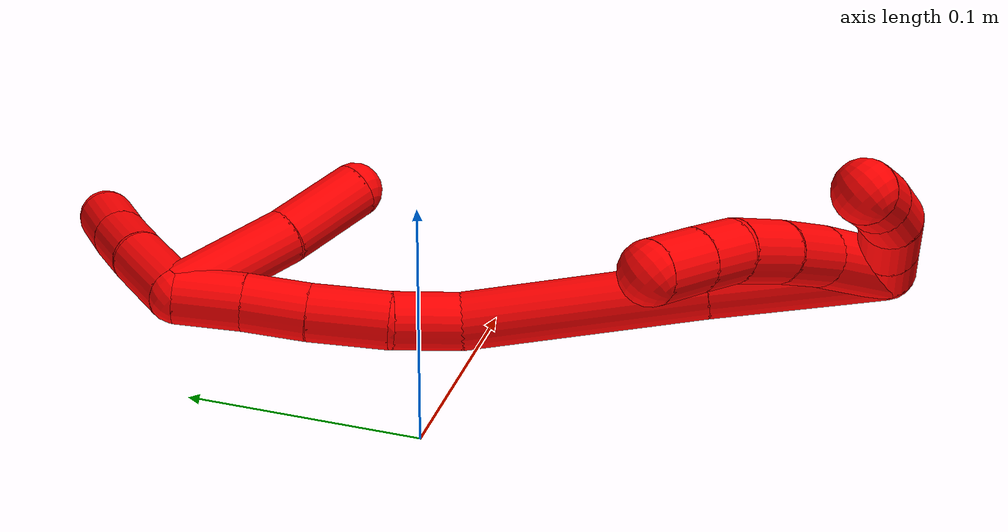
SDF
<sdf version="1.7">
 <world name="default">
  <model name="2">
   <static>0</static>
   <link name="2">
    <collision name="collision-cylinder-e_1_2_8">
     <pose>-0.015589 0.01366 0.009051 -0.9856 -0.760452 0.422829</pose>
     <geometry><cylinder><radius>0.0125</radius><length>0.045234</length></cylinder></geometry>
     <surface>
      <friction><ode><mu>1.16</mu><mu2>1.16</mu2><slip1>0</slip1><slip2>0</slip2></ode></friction>
      <contact><ode><kp>1e+06</kp><kd>1</kd><max_vel>0</max_vel><min_depth>0.001</min_depth></ode></contact>
     </surface>
    </collision>
    <visual name="visual-cylinder-e_1_2_8">
     <pose>-0.015589 0.01366 0.009051 -0.9856 -0.760452 0.422829</pose>
     <geometry><cylinder><radius>0.0125</radius><length>0.045234</length></cylinder></geometry>
     <material><ambient>1 0 0 1</ambient></material>
    </visual>
    <collision name="collision-cylinder-e_2_8_9">
     <pose>-0.04331 0.036869 0.022359 -1.15154 -0.859536 0.578371</pose>
     <geometry><cylinder><radius>0.0125</radius><length>0.032031</length></cylinder></geometry>
     <surface>
      <friction><ode><mu>1.16</mu><mu2>1.16</mu2><slip1>0</slip1><slip2>0</slip2></ode></friction>
      <contact><ode><kp>1e+06</kp><kd>1</kd><max_vel>0</max_vel><min_depth>0.001</min_depth></ode></contact>
     </surface>
    </collision>
    <visual name="visual-cylinder-e_2_8_9">
     <pose>-0.04331 0.036869 0.022359 -1.15154 -0.859536 0.578371</pose>
     <geometry><cylinder><radius>0.0125</radius><length>0.032031</length></cylinder></geometry>
     <material><ambient>1 0 0 1</ambient></material>
    </visual>
    <collision name="collision-cylinder-e_3_9_10">
     <pose>-0.065725 0.056077 0.030772 -1.16436 -0.774236 0.524397</pose>
     <geometry><cylinder><radius>0.0125</radius><length>0.029413</length></cylinder></geometry>
     <surface>
      <friction><ode><mu>1.16</mu><mu2>1.16</mu2><slip1>0</slip1><slip2>0</slip2></ode></friction>
      <contact><ode><kp>1e+06</kp><kd>1</kd><max_vel>0</max_vel><min_depth>0.001</min_depth></ode></contact>
     </surface>
    </collision>
    <visual name="visual-cylinder-e_3_9_10">
     <pose>-0.065725 0.056077 0.030772 -1.16436 -0.774236 0.524397</pose>
     <geometry><cylinder><radius>0.0125</radius><length>0.029413</length></cylinder></geometry>
     <material><ambient>1 0 0 1</ambient></material>
    </visual>
    <collision name="collision-cylinder-e_4_10_11">
     <pose>-0.08181 0.073921 0.036985 -1.32463 -0.602274 0.475247</pose>
     <geometry><cylinder><radius>0.0125</radius><length>0.020486</length></cylinder></geometry>
     <surface>
      <friction><ode><mu>1.16</mu><mu2>1.16</mu2><slip1>0</slip1><slip2>0</slip2></ode></friction>
      <contact><ode><kp>1e+06</kp><kd>1</kd><max_vel>0</max_vel><min_depth>0.001</min_depth></ode></contact>
     </surface>
    </collision>
    <visual name="visual-cylinder-e_4_10_11">
     <pose>-0.08181 0.073921 0.036985 -1.32463 -0.602274 0.475247</pose>
     <geometry><cylinder><radius>0.0125</radius><length>0.020486</length></cylinder></geometry>
     <material><ambient>1 0 0 1</ambient></material>
    </visual>
    <collision name="collision-cylinder-e_5_11_6">
     <pose>-0.093924 0.091367 0.041229 -1.33891 -0.585663 0.468435</pose>
     <geometry><cylinder><radius>0.0125</radius><length>0.022836</length></cylinder></geometry>
     <surface>
      <friction><ode><mu>1.16</mu><mu2>1.16</mu2><slip1>0</slip1><slip2>0</slip2></ode></friction>
      <contact><ode><kp>1e+06</kp><kd>1</kd><max_vel>0</max_vel><min_depth>0.001</min_depth></ode></contact>
     </surface>
    </collision>
    <visual name="visual-cylinder-e_5_11_6">
     <pose>-0.093924 0.091367 0.041229 -1.33891 -0.585663 0.468435</pose>
     <geometry><cylinder><radius>0.0125</radius><length>0.022836</length></cylinder></geometry>
     <material><ambient>1 0 0 1</ambient></material>
    </visual>
    <collision name="collision-cylinder-e_1_2_12">
     <pose>-0.011854 0.000514 0.002202 -0.229241 -1.38233 0.189912</pose>
     <geometry><cylinder><radius>0.0125</radius><length>0.024135</length></cylinder></geometry>
     <surface>
      <friction><ode><mu>1.16</mu><mu2>1.16</mu2><slip1>0</slip1><slip2>0</slip2></ode></friction>
      <contact><ode><kp>1e+06</kp><kd>1</kd><max_vel>0</max_vel><min_depth>0.001</min_depth></ode></contact>
     </surface>
    </collision>
    <visual name="visual-cylinder-e_1_2_12">
     <pose>-0.011854 0.000514 0.002202 -0.229241 -1.38233 0.189912</pose>
     <geometry><cylinder><radius>0.0125</radius><length>0.024135</length></cylinder></geometry>
     <material><ambient>1 0 0 1</ambient></material>
    </visual>
    <collision name="collision-cylinder-e_2_12_13">
     <pose>-0.037897 0.001635 0.006912 -0.237522 -1.39086 0.198496</pose>
     <geometry><cylinder><radius>0.0125</radius><length>0.028843</length></cylinder></geometry>
     <surface>
      <friction><ode><mu>1.16</mu><mu2>1.16</mu2><slip1>0</slip1><slip2>0</slip2></ode></friction>
      <contact><ode><kp>1e+06</kp><kd>1</kd><max_vel>0</max_vel><min_depth>0.001</min_depth></ode></contact>
     </surface>
    </collision>
    <visual name="visual-cylinder-e_2_12_13">
     <pose>-0.037897 0.001635 0.006912 -0.237522 -1.39086 0.198496</pose>
     <geometry><cylinder><radius>0.0125</radius><length>0.028843</length></cylinder></geometry>
     <material><ambient>1 0 0 1</ambient></material>
    </visual>
    <collision name="collision-cylinder-e_3_13_14">
     <pose>-0.063652 0.006159 0.01235 -0.928689 -1.17073 0.641114</pose>
     <geometry><cylinder><radius>0.0125</radius><length>0.025118</length></cylinder></geometry>
     <surface>
      <friction><ode><mu>1.16</mu><mu2>1.16</mu2><slip1>0</slip1><slip2>0</slip2></ode></friction>
      <contact><ode><kp>1e+06</kp><kd>1</kd><max_vel>0</max_vel><min_depth>0.001</min_depth></ode></contact>
     </surface>
    </collision>
    <visual name="visual-cylinder-e_3_13_14">
     <pose>-0.063652 0.006159 0.01235 -0.928689 -1.17073 0.641114</pose>
     <geometry><cylinder><radius>0.0125</radius><length>0.025118</length></cylinder></geometry>
     <material><ambient>1 0 0 1</ambient></material>
    </visual>
    <collision name="collision-cylinder-e_4_14_5">
     <pose>-0.085134 0.014403 0.016991 -1.19405 -1.13202 0.8154</pose>
     <geometry><cylinder><radius>0.0125</radius><length>0.021904</length></cylinder></geometry>
     <surface>
      <friction><ode><mu>1.16</mu><mu2>1.16</mu2><slip1>0</slip1><slip2>0</slip2></ode></friction>
      <contact><ode><kp>1e+06</kp><kd>1</kd><max_vel>0</max_vel><min_depth>0.001</min_depth></ode></contact>
     </surface>
    </collision>
    <visual name="visual-cylinder-e_4_14_5">
     <pose>-0.085134 0.014403 0.016991 -1.19405 -1.13202 0.8154</pose>
     <geometry><cylinder><radius>0.0125</radius><length>0.021904</length></cylinder></geometry>
     <material><ambient>1 0 0 1</ambient></material>
    </visual>
    <collision name="collision-cylinder-e_1_2_15">
     <pose>0.003376 0.030719 0.020655 -0.978847 0.090947 -0.048467</pose>
     <geometry><cylinder><radius>0.0125</radius><length>0.074342</length></cylinder></geometry>
     <surface>
      <friction><ode><mu>1.16</mu><mu2>1.16</mu2><slip1>0</slip1><slip2>0</slip2></ode></friction>
      <contact><ode><kp>1e+06</kp><kd>1</kd><max_vel>0</max_vel><min_depth>0.001</min_depth></ode></contact>
     </surface>
    </collision>
    <visual name="visual-cylinder-e_1_2_15">
     <pose>0.003376 0.030719 0.020655 -0.978847 0.090947 -0.048467</pose>
     <geometry><cylinder><radius>0.0125</radius><length>0.074342</length></cylinder></geometry>
     <material><ambient>1 0 0 1</ambient></material>
    </visual>
    <collision name="collision-cylinder-e_2_15_16">
     <pose>0.012605 0.104797 0.069338 -0.996937 0.11288 -0.061488</pose>
     <geometry><cylinder><radius>0.0125</radius><length>0.103919</length></cylinder></geometry>
     <surface>
      <friction><ode><mu>1.16</mu><mu2>1.16</mu2><slip1>0</slip1><slip2>0</slip2></ode></friction>
      <contact><ode><kp>1e+06</kp><kd>1</kd><max_vel>0</max_vel><min_depth>0.001</min_depth></ode></contact>
     </surface>
    </collision>
    <visual name="visual-cylinder-e_2_15_16">
     <pose>0.012605 0.104797 0.069338 -0.996937 0.11288 -0.061488</pose>
     <geometry><cylinder><radius>0.0125</radius><length>0.103919</length></cylinder></geometry>
     <material><ambient>1 0 0 1</ambient></material>
    </visual>
    <collision name="collision-cylinder-e_3_16_17">
     <pose>0.015816 0.159886 0.106185 -0.926191 -0.178111 0.089109</pose>
     <geometry><cylinder><radius>0.0125</radius><length>0.029823</length></cylinder></geometry>
     <surface>
      <friction><ode><mu>1.16</mu><mu2>1.16</mu2><slip1>0</slip1><slip2>0</slip2></ode></friction>
      <contact><ode><kp>1e+06</kp><kd>1</kd><max_vel>0</max_vel><min_depth>0.001</min_depth></ode></contact>
     </surface>
    </collision>
    <visual name="visual-cylinder-e_3_16_17">
     <pose>0.015816 0.159886 0.106185 -0.926191 -0.178111 0.089109</pose>
     <geometry><cylinder><radius>0.0125</radius><length>0.029823</length></cylinder></geometry>
     <material><ambient>1 0 0 1</ambient></material>
    </visual>
    <collision name="collision-cylinder-e_4_17_18">
     <pose>0.013313 0.183989 0.127323 -0.787519 0.007966 -0.00331</pose>
     <geometry><cylinder><radius>0.0125</radius><length>0.034921</length></cylinder></geometry>
     <surface>
      <friction><ode><mu>1.16</mu><mu2>1.16</mu2><slip1>0</slip1><slip2>0</slip2></ode></friction>
      <contact><ode><kp>1e+06</kp><kd>1</kd><max_vel>0</max_vel><min_depth>0.001</min_depth></ode></contact>
     </surface>
    </collision>
    <visual name="visual-cylinder-e_4_17_18">
     <pose>0.013313 0.183989 0.127323 -0.787519 0.007966 -0.00331</pose>
     <geometry><cylinder><radius>0.0125</radius><length>0.034921</length></cylinder></geometry>
     <material><ambient>1 0 0 1</ambient></material>
    </visual>
    <collision name="collision-cylinder-e_5_18_19">
     <pose>0.013422 0.205649 0.149998 -0.731125 -0.002163 0.000828</pose>
     <geometry><cylinder><radius>0.0125</radius><length>0.027821</length></cylinder></geometry>
     <surface>
      <friction><ode><mu>1.16</mu><mu2>1.16</mu2><slip1>0</slip1><slip2>0</slip2></ode></friction>
      <contact><ode><kp>1e+06</kp><kd>1</kd><max_vel>0</max_vel><min_depth>0.001</min_depth></ode></contact>
     </surface>
    </collision>
    <visual name="visual-cylinder-e_5_18_19">
     <pose>0.013422 0.205649 0.149998 -0.731125 -0.002163 0.000828</pose>
     <geometry><cylinder><radius>0.0125</radius><length>0.027821</length></cylinder></geometry>
     <material><ambient>1 0 0 1</ambient></material>
    </visual>
    <collision name="collision-cylinder-e_6_19_1">
     <pose>0.013061 0.225236 0.170678 -0.784117 -0.022668 0.009373</pose>
     <geometry><cylinder><radius>0.0125</radius><length>0.029174</length></cylinder></geometry>
     <surface>
      <friction><ode><mu>1.16</mu><mu2>1.16</mu2><slip1>0</slip1><slip2>0</slip2></ode></friction>
      <contact><ode><kp>1e+06</kp><kd>1</kd><max_vel>0</max_vel><min_depth>0.001</min_depth></ode></contact>
     </surface>
    </collision>
    <visual name="visual-cylinder-e_6_19_1">
     <pose>0.013061 0.225236 0.170678 -0.784117 -0.022668 0.009373</pose>
     <geometry><cylinder><radius>0.0125</radius><length>0.029174</length></cylinder></geometry>
     <material><ambient>1 0 0 1</ambient></material>
    </visual>
    <collision name="collision-cylinder-e_1_1_20">
     <pose>0.025066 0.236521 0.196664 -0.062907 0.666192 -0.021771</pose>
     <geometry><cylinder><radius>0.0125</radius><length>0.03992</length></cylinder></geometry>
     <surface>
      <friction><ode><mu>1.16</mu><mu2>1.16</mu2><slip1>0</slip1><slip2>0</slip2></ode></friction>
      <contact><ode><kp>1e+06</kp><kd>1</kd><max_vel>0</max_vel><min_depth>0.001</min_depth></ode></contact>
     </surface>
    </collision>
    <visual name="visual-cylinder-e_1_1_20">
     <pose>0.025066 0.236521 0.196664 -0.062907 0.666192 -0.021771</pose>
     <geometry><cylinder><radius>0.0125</radius><length>0.03992</length></cylinder></geometry>
     <material><ambient>1 0 0 1</ambient></material>
    </visual>
    <collision name="collision-cylinder-e_2_20_21">
     <pose>0.049042 0.237623 0.223289 -0.010494 0.815326 -0.004532</pose>
     <geometry><cylinder><radius>0.0125</radius><length>0.031983</length></cylinder></geometry>
     <surface>
      <friction><ode><mu>1.16</mu><mu2>1.16</mu2><slip1>0</slip1><slip2>0</slip2></ode></friction>
      <contact><ode><kp>1e+06</kp><kd>1</kd><max_vel>0</max_vel><min_depth>0.001</min_depth></ode></contact>
     </surface>
    </collision>
    <visual name="visual-cylinder-e_2_20_21">
     <pose>0.049042 0.237623 0.223289 -0.010494 0.815326 -0.004532</pose>
     <geometry><cylinder><radius>0.0125</radius><length>0.031983</length></cylinder></geometry>
     <material><ambient>1 0 0 1</ambient></material>
    </visual>
    <collision name="collision-cylinder-e_3_21_4">
     <pose>0.070736 0.237268 0.244054 0.04787 0.797503 0.020172</pose>
     <geometry><cylinder><radius>0.0125</radius><length>0.028097</length></cylinder></geometry>
     <surface>
      <friction><ode><mu>1.16</mu><mu2>1.16</mu2><slip1>0</slip1><slip2>0</slip2></ode></friction>
      <contact><ode><kp>1e+06</kp><kd>1</kd><max_vel>0</max_vel><min_depth>0.001</min_depth></ode></contact>
     </surface>
    </collision>
    <visual name="visual-cylinder-e_3_21_4">
     <pose>0.070736 0.237268 0.244054 0.04787 0.797503 0.020172</pose>
     <geometry><cylinder><radius>0.0125</radius><length>0.028097</length></cylinder></geometry>
     <material><ambient>1 0 0 1</ambient></material>
    </visual>
    <collision name="collision-cylinder-e_1_1_22">
     <pose>0.023492 0.20879 0.180138 1.60312 0.382376 0.394622</pose>
     <geometry><cylinder><radius>0.0125</radius><length>0.057682</length></cylinder></geometry>
     <surface>
      <friction><ode><mu>1.16</mu><mu2>1.16</mu2><slip1>0</slip1><slip2>0</slip2></ode></friction>
      <contact><ode><kp>1e+06</kp><kd>1</kd><max_vel>0</max_vel><min_depth>0.001</min_depth></ode></contact>
     </surface>
    </collision>
    <visual name="visual-cylinder-e_1_1_22">
     <pose>0.023492 0.20879 0.180138 1.60312 0.382376 0.394622</pose>
     <geometry><cylinder><radius>0.0125</radius><length>0.057682</length></cylinder></geometry>
     <material><ambient>1 0 0 1</ambient></material>
    </visual>
    <collision name="collision-cylinder-e_2_22_3">
     <pose>0.042295 0.162524 0.180651 1.50035 0.389849 0.363913</pose>
     <geometry><cylinder><radius>0.0125</radius><length>0.042318</length></cylinder></geometry>
     <surface>
      <friction><ode><mu>1.16</mu><mu2>1.16</mu2><slip1>0</slip1><slip2>0</slip2></ode></friction>
      <contact><ode><kp>1e+06</kp><kd>1</kd><max_vel>0</max_vel><min_depth>0.001</min_depth></ode></contact>
     </surface>
    </collision>
    <visual name="visual-cylinder-e_2_22_3">
     <pose>0.042295 0.162524 0.180651 1.50035 0.389849 0.363913</pose>
     <geometry><cylinder><radius>0.0125</radius><length>0.042318</length></cylinder></geometry>
     <material><ambient>1 0 0 1</ambient></material>
    </visual>
    <collision name="collision-sphere-3">
     <pose>0.050336 0.143001 0.182029 0 -0 0</pose>
     <geometry><sphere><radius>0.0125</radius></sphere></geometry>
     <surface>
      <friction><ode><mu>1.16</mu><mu2>1.16</mu2><slip1>0</slip1><slip2>0</slip2></ode></friction>
      <contact><ode><kp>1e+06</kp><kd>1</kd><max_vel>0</max_vel><min_depth>0.001</min_depth></ode></contact>
     </surface>
    </collision>
    <visual name="visual-sphere-3">
     <pose>0.050336 0.143001 0.182029 0 -0 0</pose>
     <geometry><sphere><radius>0.0125</radius></sphere></geometry>
     <material><ambient>1 0 0 1</ambient></material>
    </visual>
    <collision name="collision-sphere-22">
     <pose>0.034253 0.182046 0.179274 0 -0 0</pose>
     <geometry><sphere><radius>0.0125</radius></sphere></geometry>
     <surface>
      <friction><ode><mu>1.16</mu><mu2>1.16</mu2><slip1>0</slip1><slip2>0</slip2></ode></friction>
      <contact><ode><kp>1e+06</kp><kd>1</kd><max_vel>0</max_vel><min_depth>0.001</min_depth></ode></contact>
     </surface>
    </collision>
    <visual name="visual-sphere-22">
     <pose>0.034253 0.182046 0.179274 0 -0 0</pose>
     <geometry><sphere><radius>0.0125</radius></sphere></geometry>
     <material><ambient>1 0 0 1</ambient></material>
    </visual>
    <collision name="collision-sphere-4">
     <pose>0.080789 0.236799 0.253856 0 -0 0</pose>
     <geometry><sphere><radius>0.0125</radius></sphere></geometry>
     <surface>
      <friction><ode><mu>1.16</mu><mu2>1.16</mu2><slip1>0</slip1><slip2>0</slip2></ode></friction>
      <contact><ode><kp>1e+06</kp><kd>1</kd><max_vel>0</max_vel><min_depth>0.001</min_depth></ode></contact>
     </surface>
    </collision>
    <visual name="visual-sphere-4">
     <pose>0.080789 0.236799 0.253856 0 -0 0</pose>
     <geometry><sphere><radius>0.0125</radius></sphere></geometry>
     <material><ambient>1 0 0 1</ambient></material>
    </visual>
    <collision name="collision-sphere-21">
     <pose>0.060683 0.237738 0.234253 0 -0 0</pose>
     <geometry><sphere><radius>0.0125</radius></sphere></geometry>
     <surface>
      <friction><ode><mu>1.16</mu><mu2>1.16</mu2><slip1>0</slip1><slip2>0</slip2></ode></friction>
      <contact><ode><kp>1e+06</kp><kd>1</kd><max_vel>0</max_vel><min_depth>0.001</min_depth></ode></contact>
     </surface>
    </collision>
    <visual name="visual-sphere-21">
     <pose>0.060683 0.237738 0.234253 0 -0 0</pose>
     <geometry><sphere><radius>0.0125</radius></sphere></geometry>
     <material><ambient>1 0 0 1</ambient></material>
    </visual>
    <collision name="collision-sphere-20">
     <pose>0.037401 0.237508 0.212326 0 -0 0</pose>
     <geometry><sphere><radius>0.0125</radius></sphere></geometry>
     <surface>
      <friction><ode><mu>1.16</mu><mu2>1.16</mu2><slip1>0</slip1><slip2>0</slip2></ode></friction>
      <contact><ode><kp>1e+06</kp><kd>1</kd><max_vel>0</max_vel><min_depth>0.001</min_depth></ode></contact>
     </surface>
    </collision>
    <visual name="visual-sphere-20">
     <pose>0.037401 0.237508 0.212326 0 -0 0</pose>
     <geometry><sphere><radius>0.0125</radius></sphere></geometry>
     <material><ambient>1 0 0 1</ambient></material>
    </visual>
    <collision name="collision-sphere-6">
     <pose>-0.100235 0.100628 0.043415 0 -0 0</pose>
     <geometry><sphere><radius>0.0125</radius></sphere></geometry>
     <surface>
      <friction><ode><mu>1.16</mu><mu2>1.16</mu2><slip1>0</slip1><slip2>0</slip2></ode></friction>
      <contact><ode><kp>1e+06</kp><kd>1</kd><max_vel>0</max_vel><min_depth>0.001</min_depth></ode></contact>
     </surface>
    </collision>
    <visual name="visual-sphere-6">
     <pose>-0.100235 0.100628 0.043415 0 -0 0</pose>
     <geometry><sphere><radius>0.0125</radius></sphere></geometry>
     <material><ambient>1 0 0 1</ambient></material>
    </visual>
    <collision name="collision-sphere-11">
     <pose>-0.087613 0.082107 0.039042 0 -0 0</pose>
     <geometry><sphere><radius>0.0125</radius></sphere></geometry>
     <surface>
      <friction><ode><mu>1.16</mu><mu2>1.16</mu2><slip1>0</slip1><slip2>0</slip2></ode></friction>
      <contact><ode><kp>1e+06</kp><kd>1</kd><max_vel>0</max_vel><min_depth>0.001</min_depth></ode></contact>
     </surface>
    </collision>
    <visual name="visual-sphere-11">
     <pose>-0.087613 0.082107 0.039042 0 -0 0</pose>
     <geometry><sphere><radius>0.0125</radius></sphere></geometry>
     <material><ambient>1 0 0 1</ambient></material>
    </visual>
    <collision name="collision-sphere-10">
     <pose>-0.076007 0.065734 0.034928 0 -0 0</pose>
     <geometry><sphere><radius>0.0125</radius></sphere></geometry>
     <surface>
      <friction><ode><mu>1.16</mu><mu2>1.16</mu2><slip1>0</slip1><slip2>0</slip2></ode></friction>
      <contact><ode><kp>1e+06</kp><kd>1</kd><max_vel>0</max_vel><min_depth>0.001</min_depth></ode></contact>
     </surface>
    </collision>
    <visual name="visual-sphere-10">
     <pose>-0.076007 0.065734 0.034928 0 -0 0</pose>
     <geometry><sphere><radius>0.0125</radius></sphere></geometry>
     <material><ambient>1 0 0 1</ambient></material>
    </visual>
    <collision name="collision-sphere-9">
     <pose>-0.055442 0.046419 0.026615 0 -0 0</pose>
     <geometry><sphere><radius>0.0125</radius></sphere></geometry>
     <surface>
      <friction><ode><mu>1.16</mu><mu2>1.16</mu2><slip1>0</slip1><slip2>0</slip2></ode></friction>
      <contact><ode><kp>1e+06</kp><kd>1</kd><max_vel>0</max_vel><min_depth>0.001</min_depth></ode></contact>
     </surface>
    </collision>
    <visual name="visual-sphere-9">
     <pose>-0.055442 0.046419 0.026615 0 -0 0</pose>
     <geometry><sphere><radius>0.0125</radius></sphere></geometry>
     <material><ambient>1 0 0 1</ambient></material>
    </visual>
    <collision name="collision-sphere-2">
     <geometry><sphere><radius>0.0125</radius></sphere></geometry>
     <surface>
      <friction><ode><mu>1.16</mu><mu2>1.16</mu2><slip1>0</slip1><slip2>0</slip2></ode></friction>
      <contact><ode><kp>1e+06</kp><kd>1</kd><max_vel>0</max_vel><min_depth>0.001</min_depth></ode></contact>
     </surface>
    </collision>
    <visual name="visual-sphere-2">
     <geometry><sphere><radius>0.0125</radius></sphere></geometry>
     <material><ambient>1 0 0 1</ambient></material>
    </visual>
    <collision name="collision-sphere-19">
     <pose>0.013392 0.214938 0.160353 0 -0 0</pose>
     <geometry><sphere><radius>0.0125</radius></sphere></geometry>
     <surface>
      <friction><ode><mu>1.16</mu><mu2>1.16</mu2><slip1>0</slip1><slip2>0</slip2></ode></friction>
      <contact><ode><kp>1e+06</kp><kd>1</kd><max_vel>0</max_vel><min_depth>0.001</min_depth></ode></contact>
     </surface>
    </collision>
    <visual name="visual-sphere-19">
     <pose>0.013392 0.214938 0.160353 0 -0 0</pose>
     <geometry><sphere><radius>0.0125</radius></sphere></geometry>
     <material><ambient>1 0 0 1</ambient></material>
    </visual>
    <collision name="collision-sphere-8">
     <pose>-0.031178 0.02732 0.018103 0 -0 0</pose>
     <geometry><sphere><radius>0.0125</radius></sphere></geometry>
     <surface>
      <friction><ode><mu>1.16</mu><mu2>1.16</mu2><slip1>0</slip1><slip2>0</slip2></ode></friction>
      <contact><ode><kp>1e+06</kp><kd>1</kd><max_vel>0</max_vel><min_depth>0.001</min_depth></ode></contact>
     </surface>
    </collision>
    <visual name="visual-sphere-8">
     <pose>-0.031178 0.02732 0.018103 0 -0 0</pose>
     <geometry><sphere><radius>0.0125</radius></sphere></geometry>
     <material><ambient>1 0 0 1</ambient></material>
    </visual>
    <collision name="collision-sphere-12">
     <pose>-0.023708 0.001028 0.004404 0 -0 0</pose>
     <geometry><sphere><radius>0.0125</radius></sphere></geometry>
     <surface>
      <friction><ode><mu>1.16</mu><mu2>1.16</mu2><slip1>0</slip1><slip2>0</slip2></ode></friction>
      <contact><ode><kp>1e+06</kp><kd>1</kd><max_vel>0</max_vel><min_depth>0.001</min_depth></ode></contact>
     </surface>
    </collision>
    <visual name="visual-sphere-12">
     <pose>-0.023708 0.001028 0.004404 0 -0 0</pose>
     <geometry><sphere><radius>0.0125</radius></sphere></geometry>
     <material><ambient>1 0 0 1</ambient></material>
    </visual>
    <collision name="collision-sphere-13">
     <pose>-0.052085 0.002242 0.009421 0 -0 0</pose>
     <geometry><sphere><radius>0.0125</radius></sphere></geometry>
     <surface>
      <friction><ode><mu>1.16</mu><mu2>1.16</mu2><slip1>0</slip1><slip2>0</slip2></ode></friction>
      <contact><ode><kp>1e+06</kp><kd>1</kd><max_vel>0</max_vel><min_depth>0.001</min_depth></ode></contact>
     </surface>
    </collision>
    <visual name="visual-sphere-13">
     <pose>-0.052085 0.002242 0.009421 0 -0 0</pose>
     <geometry><sphere><radius>0.0125</radius></sphere></geometry>
     <material><ambient>1 0 0 1</ambient></material>
    </visual>
    <collision name="collision-sphere-14">
     <pose>-0.07522 0.010077 0.01528 0 -0 0</pose>
     <geometry><sphere><radius>0.0125</radius></sphere></geometry>
     <surface>
      <friction><ode><mu>1.16</mu><mu2>1.16</mu2><slip1>0</slip1><slip2>0</slip2></ode></friction>
      <contact><ode><kp>1e+06</kp><kd>1</kd><max_vel>0</max_vel><min_depth>0.001</min_depth></ode></contact>
     </surface>
    </collision>
    <visual name="visual-sphere-14">
     <pose>-0.07522 0.010077 0.01528 0 -0 0</pose>
     <geometry><sphere><radius>0.0125</radius></sphere></geometry>
     <material><ambient>1 0 0 1</ambient></material>
    </visual>
    <collision name="collision-sphere-5">
     <pose>-0.095049 0.018729 0.018703 0 -0 0</pose>
     <geometry><sphere><radius>0.0125</radius></sphere></geometry>
     <surface>
      <friction><ode><mu>1.16</mu><mu2>1.16</mu2><slip1>0</slip1><slip2>0</slip2></ode></friction>
      <contact><ode><kp>1e+06</kp><kd>1</kd><max_vel>0</max_vel><min_depth>0.001</min_depth></ode></contact>
     </surface>
    </collision>
    <visual name="visual-sphere-5">
     <pose>-0.095049 0.018729 0.018703 0 -0 0</pose>
     <geometry><sphere><radius>0.0125</radius></sphere></geometry>
     <material><ambient>1 0 0 1</ambient></material>
    </visual>
    <collision name="collision-sphere-15">
     <pose>0.006752 0.061438 0.04131 0 -0 0</pose>
     <geometry><sphere><radius>0.0125</radius></sphere></geometry>
     <surface>
      <friction><ode><mu>1.16</mu><mu2>1.16</mu2><slip1>0</slip1><slip2>0</slip2></ode></friction>
      <contact><ode><kp>1e+06</kp><kd>1</kd><max_vel>0</max_vel><min_depth>0.001</min_depth></ode></contact>
     </surface>
    </collision>
    <visual name="visual-sphere-15">
     <pose>0.006752 0.061438 0.04131 0 -0 0</pose>
     <geometry><sphere><radius>0.0125</radius></sphere></geometry>
     <material><ambient>1 0 0 1</ambient></material>
    </visual>
    <collision name="collision-sphere-16">
     <pose>0.018457 0.148155 0.097366 0 -0 0</pose>
     <geometry><sphere><radius>0.0125</radius></sphere></geometry>
     <surface>
      <friction><ode><mu>1.16</mu><mu2>1.16</mu2><slip1>0</slip1><slip2>0</slip2></ode></friction>
      <contact><ode><kp>1e+06</kp><kd>1</kd><max_vel>0</max_vel><min_depth>0.001</min_depth></ode></contact>
     </surface>
    </collision>
    <visual name="visual-sphere-16">
     <pose>0.018457 0.148155 0.097366 0 -0 0</pose>
     <geometry><sphere><radius>0.0125</radius></sphere></geometry>
     <material><ambient>1 0 0 1</ambient></material>
    </visual>
    <collision name="collision-sphere-17">
     <pose>0.013174 0.171617 0.115003 0 -0 0</pose>
     <geometry><sphere><radius>0.0125</radius></sphere></geometry>
     <surface>
      <friction><ode><mu>1.16</mu><mu2>1.16</mu2><slip1>0</slip1><slip2>0</slip2></ode></friction>
      <contact><ode><kp>1e+06</kp><kd>1</kd><max_vel>0</max_vel><min_depth>0.001</min_depth></ode></contact>
     </surface>
    </collision>
    <visual name="visual-sphere-17">
     <pose>0.013174 0.171617 0.115003 0 -0 0</pose>
     <geometry><sphere><radius>0.0125</radius></sphere></geometry>
     <material><ambient>1 0 0 1</ambient></material>
    </visual>
    <collision name="collision-sphere-18">
     <pose>0.013452 0.196361 0.139643 0 -0 0</pose>
     <geometry><sphere><radius>0.0125</radius></sphere></geometry>
     <surface>
      <friction><ode><mu>1.16</mu><mu2>1.16</mu2><slip1>0</slip1><slip2>0</slip2></ode></friction>
      <contact><ode><kp>1e+06</kp><kd>1</kd><max_vel>0</max_vel><min_depth>0.001</min_depth></ode></contact>
     </surface>
    </collision>
    <visual name="visual-sphere-18">
     <pose>0.013452 0.196361 0.139643 0 -0 0</pose>
     <geometry><sphere><radius>0.0125</radius></sphere></geometry>
     <material><ambient>1 0 0 1</ambient></material>
    </visual>
    <collision name="collision-sphere-1">
     <pose>0.01273 0.235535 0.181003 0 -0 0</pose>
     <geometry><sphere><radius>0.0125</radius></sphere></geometry>
     <surface>
      <friction><ode><mu>1.16</mu><mu2>1.16</mu2><slip1>0</slip1><slip2>0</slip2></ode></friction>
      <contact><ode><kp>1e+06</kp><kd>1</kd><max_vel>0</max_vel><min_depth>0.001</min_depth></ode></contact>
     </surface>
    </collision>
    <visual name="visual-sphere-1">
     <pose>0.01273 0.235535 0.181003 0 -0 0</pose>
     <geometry><sphere><radius>0.0125</radius></sphere></geometry>
     <material><ambient>1 0 0 1</ambient></material>
    </visual>
    <inertial>
     <pose>-0.002314 0.115824 0.093408 0 -0 0</pose>
     <mass>0.75</mass>
     <inertia>
      <ixx>0.000199</ixx>
      <ixy>0</ixy>
      <ixz>0</ixz>
      <iyy>0.000154</iyy>
      <iyz>0</iyz>
      <izz>-9.9e-05</izz>
     </inertia>
    </inertial>
   </link>
   <pose>0.124226 -0.161522 0.038244 -0.690972 0.768862 0.287082</pose>
  </model>
 </world>
</sdf>
